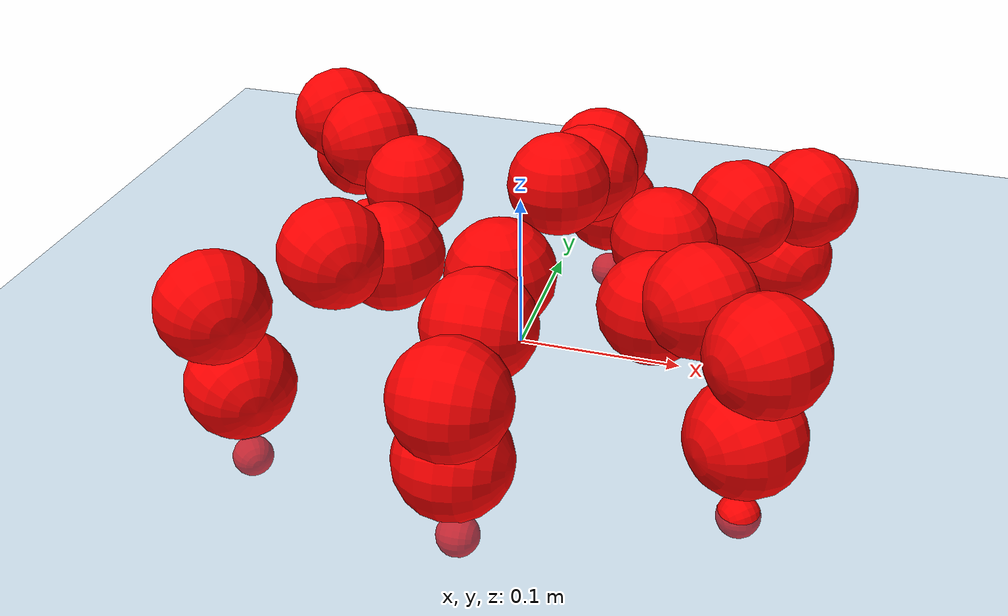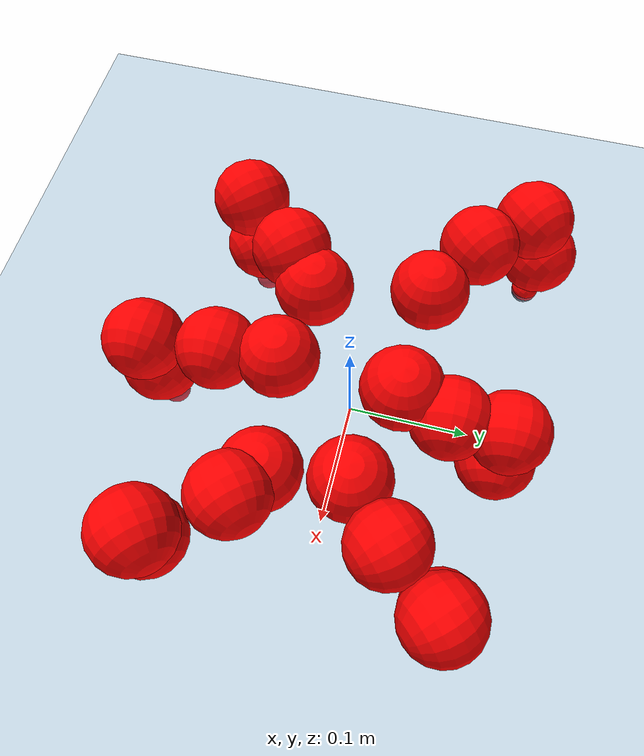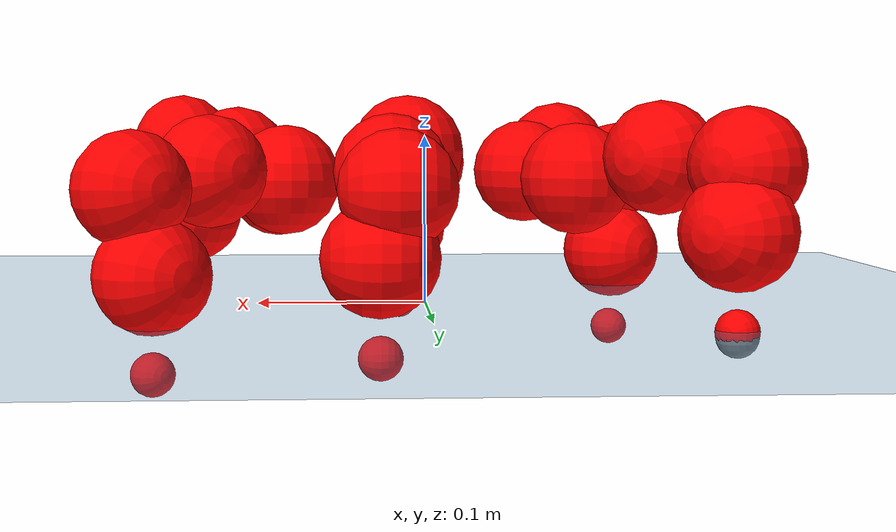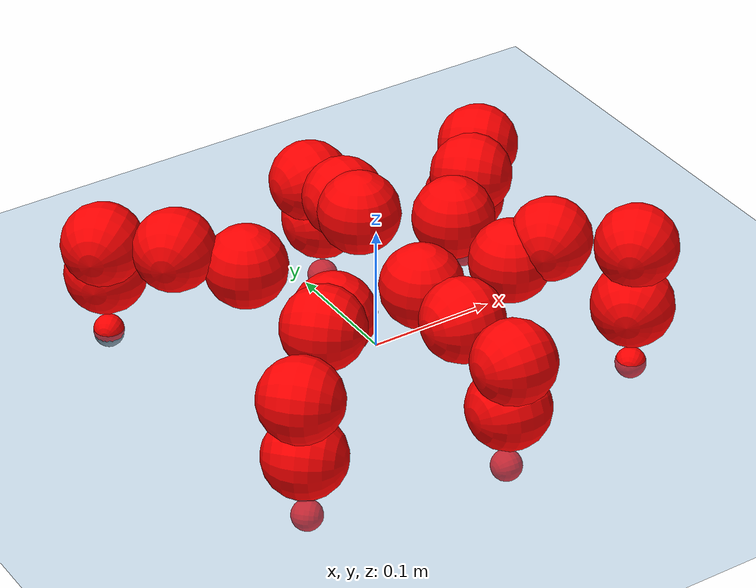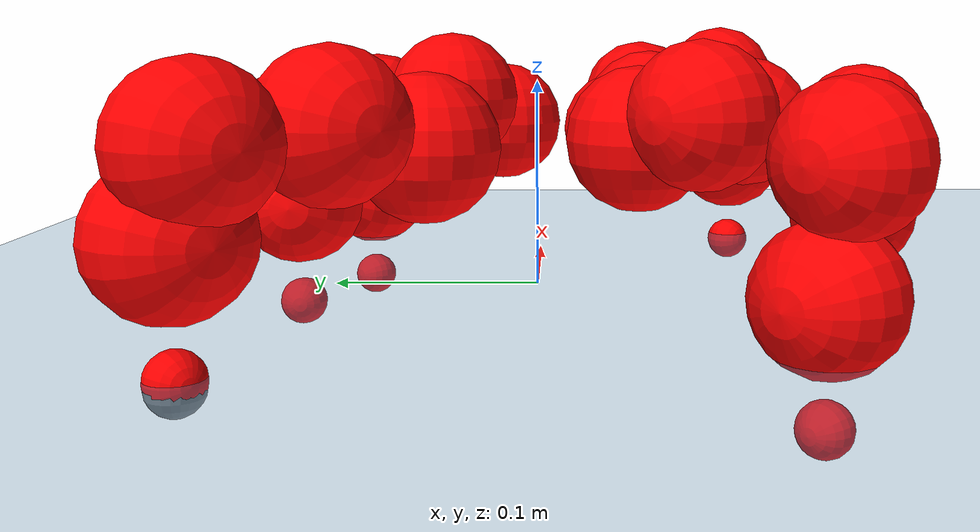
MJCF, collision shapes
<mujoco model="Golem">
  <compiler angle="radian" assetdir="assets" balanceinertia="true" inertiafromgeom="false"/>

  <option timestep="0.005" density="1.2" viscosity="2e-05"/>

  <size nkey="1"/>

  <visual>
    <quality shadowsize="8192"/>
    <map shadowclip="0.5"/>
  </visual>

  <default>
    <default class="/">
      <joint armature="0.01" damping="0.01" frictionloss="0.01"/>
      <geom contype="0" conaffinity="0" group="1" solref="-1000 -80"/>
      <site size="0.01 0.005 0.005" group="5"/>
      <general forcelimited="true" biastype="affine" gainprm="25" biasprm="0 -25 -0.5"/>
      <default class="visual">
        <geom type="mesh" group="2"/>
      </default>
      <default class="collision">
        <geom group="3"/>
      </default>
      <default class="foot">
        <geom size="0.01 0 0" condim="6" group="4" priority="1" solimp="0.015 1 0.01"/>
      </default>
      <default class="reward_collision_sphere">
        <geom group="5" rgba="1 0 0 1"/>
      </default>
    </default>
  </default>

  <asset>
    <texture type="skybox" colorspace="auto" name="//unnamed_texture_0" builtin="gradient" rgb1="0.95 0.95 0.95" rgb2="0.95 0.95 0.95" width="100" height="600"/>
    <texture type="2d" colorspace="auto" name="texplane" builtin="checker" rgb1="0.345 0.575 0.748" rgb2="0.345 0.575 0.748" markrgb="1 1 1" width="512" height="512"/>
    <material name="MatPlane" class="/" texture="texplane" texuniform="true" texrepeat="2 2" specular="0.9"/>
    <mesh name="body" class="/" file="body.stl" scale="0.001 0.001 0.001"/>
    <mesh name="coxa" class="/" file="coxa.stl" scale="0.001 0.001 0.001"/>
    <mesh name="femur" class="/" file="femur.stl" scale="0.001 0.001 0.001"/>
    <mesh name="tibia" class="/" file="tibia.stl" scale="0.001 0.001 0.001"/>
    <mesh name="tarsus" class="/" file="tarsus.stl" scale="0.001 0.001 0.001"/>
  </asset>

  <worldbody>
    <geom name="floor" class="/" size="100 100 0.125" type="plane" group="0" material="MatPlane"/>
    <light name="toplight_shadow" class="/" pos="0 0 5" dir="0.0990148 0.0990148 -0.990148" type="directional" ambient="0.04 0.04 0.04" diffuse="0.55 0.55 0.55" specular="0.12 0.12 0.12"/>
    <light name="toplight_fill" class="/" pos="0 0 5" dir="0.0990148 0.0990148 -0.990148" type="directional" castshadow="false" ambient="0.04 0.04 0.04" diffuse="0.3 0.3 0.3" specular="0.08 0.08 0.08"/>
    <body name="trunk" pos="0.000896295 -0.000934111 -0.00484269" quat="0.999969 0.00319632 -0.00717621 0.000595019">
      <inertial pos="-0.00562928 -0.000708529 -0.00518128" quat="0.999989 0.00419177 -0.00222785 0.000319306" mass="1.50883" diaginertia="0.000259431 0.000577699 0.0412542"/>
      <joint name="//unnamed_joint_0" type="free"/>
      <geom name="//unnamed_geom_1" class="/" pos="0 0 0.0861737" quat="1 0 0 0" type="mesh" rgba="0.9 0.9 0.9 1" mesh="body"/>
      <site name="imu" class="/" pos="-0.0109355 0.0472601 0.136414" size="0.00795299"/>
      <camera name="track" class="/" pos="0 -1.10348 0" quat="0.707107 0.707107 0 0" mode="trackcom"/>
      <camera name="ego_camera" class="/" pos="0.0634 0 0.134646" quat="-0.5 -0.5 0.5 0.5"/>
      <body name="coxa_RR" pos="-0.0752356 -0.0536824 0.0839525" quat="0.377282 0.0020507 -0.00474596 -0.926084">
        <inertial pos="0.00147471 -0.000594544 -0.0118181" quat="0.998666 0.0152169 -0.0156228 0.0467999" mass="0.0898073" diaginertia="0.000230866 0.000431814 0.0377928"/>
        <joint name="coxa_joint_RR" class="/" pos="0 0 0" axis="0.00799956 -0.00955646 -0.999922" range="-2.8983 3.42052" armature="0.00806352" damping="0" frictionloss="0.00413123"/>
        <geom name="//unnamed_geom_2" class="/" type="mesh" rgba="0.2 0.2 0.2 1" mesh="coxa"/>
        <geom name="//unnamed_geom_3" class="reward_collision_sphere" size="0.031812" pos="-0.0146308 0 0"/>
        <body name="femur_RR" pos="0.0194428 0.000908717 0.0121145" quat="0.500243 -0.499329 0.501396 0.499029">
          <inertial pos="0.00115072 -0.000954819 0.00438458" quat="0.999964 -0.0044542 0.00550045 0.00475107" mass="0.100187" diaginertia="0.000250325 0.000459715 0.0480258"/>
          <joint name="femur_joint_RR" class="/" pos="0 0 0" axis="0.0269482 0.0304647 -0.999173" range="-3.41923 3.12068" armature="0.0130012" damping="0.0476974" frictionloss="0.0102863"/>
          <geom name="//unnamed_geom_4" class="/" type="mesh" rgba="0.9 0.9 0.9 1" mesh="femur"/>
          <geom name="//unnamed_geom_5" class="reward_collision_sphere" size="0.031812"/>
          <body name="tibia_RR" pos="0.0114918 -0.0706952 0.00105702" quat="-0.0027545 0.999984 -0.00480927 -0.000956061">
            <inertial pos="-0.0124993 -0.00925017 -0.000548238" quat="0.999958 -0.00459987 0.0060901 -0.00512444" mass="0.0852925" diaginertia="0.000297936 0.000507533 0.0515302"/>
            <joint name="tibia_joint_RR" class="/" pos="0 0 0" axis="-0.037464 0.0612145 0.997421" range="-3.42805 3.11683" armature="0.0123184" damping="0.0557547" frictionloss="0.00930701"/>
            <geom name="//unnamed_geom_6" class="/" type="mesh" rgba="0.2 0.2 0.2 1" mesh="tibia"/>
            <geom name="//unnamed_geom_7" class="reward_collision_sphere" size="0.031812"/>
            <body name="tarsus_RR" pos="0.0547562 -0.00798392 0.000584257" quat="0.999994 -0.000446513 0.00256043 -0.00217583">
              <inertial pos="0.0290967 0.00301612 -0.00271778" quat="0.500258 0.501433 0.497829 0.500473" mass="0.0912549" diaginertia="0.000218998 0.000506268 0.0344169"/>
              <joint name="tarsus_joint_RR" class="/" pos="0 0 0" axis="-0.0192849 0.0600835 0.998007" range="-2.97693 3.20497" armature="0.00951324" damping="0" frictionloss="0.00641302"/>
              <geom name="//unnamed_geom_8" class="/" type="mesh" rgba="0.9 0.9 0.9 1" mesh="tarsus"/>
              <geom name="foot_1" class="foot" size="0.00610261" pos="0.0546215 0 0" quat="0 -0.707107 0 0.707107"/>
              <geom name="//unnamed_geom_10" class="reward_collision_sphere" size="0.031812"/>
              <geom name="//unnamed_geom_11" class="reward_collision_sphere" size="0.0119295" pos="0.0524269 0 0"/>
              <site name="foot_1" class="foot" pos="0.0546215 0 0" quat="0 -0.707107 0 0.707107" size="0.00795299"/>
            </body>
          </body>
        </body>
      </body>
      <body name="coxa_RM" pos="0.00457726 -0.0676198 0.0879784" quat="0.706653 0.000727651 0.0069771 -0.707526">
        <inertial pos="-0.00812201 0.013285 -0.006255" quat="0.999958 0.0078432 0.00164024 0.00448897" mass="0.125259" diaginertia="0.000348331 0.000553348 0.0475248"/>
        <joint name="coxa_joint_RM" class="/" pos="0 0 0" axis="-0.0372076 -0.0541458 -0.99784" stiffness="0.00263056" range="-3.15499 2.88862" armature="0.0024662" damping="0.0218777" frictionloss="0.01235"/>
        <geom name="//unnamed_geom_12" class="/" type="mesh" rgba="0.2 0.2 0.2 1" mesh="coxa"/>
        <geom name="//unnamed_geom_13" class="reward_collision_sphere" size="0.031812" pos="-0.0146308 0 0"/>
        <body name="femur_RM" pos="0.0336128 0.00287222 -0.00229123" quat="0.499983 -0.499933 0.500072 0.500012">
          <inertial pos="-0.0101397 -0.00493237 -0.00250769" quat="0.999711 -0.0100319 -0.013015 0.017521" mass="0.0778345" diaginertia="0.000280149 0.000479096 0.0415234"/>
          <joint name="femur_joint_RM" class="/" pos="0 0 0" axis="0.0279764 -0.01544 -0.999489" stiffness="0.00356394" range="-2.97032 3.15282" armature="0.00924121" damping="0" frictionloss="0.00373619"/>
          <geom name="//unnamed_geom_14" class="/" type="mesh" rgba="0.9 0.9 0.9 1" mesh="femur"/>
          <geom name="//unnamed_geom_15" class="reward_collision_sphere" size="0.031812"/>
          <body name="tibia_RM" pos="0.00254204 -0.0586264 0.00396166" quat="-0.00129412 0.999999 0.000561277 0.000299214">
            <inertial pos="-0.00703846 0.00230003 0.0134853" quat="0.997918 0.0406155 -0.050075 0.00151452" mass="0.101603" diaginertia="0.000226624 0.000499413 0.0370301"/>
            <joint name="tibia_joint_RM" class="/" pos="0 0 0" axis="0.0046515 0.00115705 0.999989" range="-3.21902 3.28886" armature="0.00308735" damping="0" frictionloss="0.00187334"/>
            <geom name="//unnamed_geom_16" class="/" type="mesh" rgba="0.2 0.2 0.2 1" mesh="tibia"/>
            <geom name="//unnamed_geom_17" class="reward_collision_sphere" size="0.031812"/>
            <body name="tarsus_RM" pos="0.0406864 -0.00257797 0.00120697" quat="1 -0.000268519 0.000381847 0.000172052">
              <inertial pos="0.0184313 0.000584034 0.00290878" quat="0.471509 0.532254 0.518796 0.47459" mass="0.0954412" diaginertia="0.000247376 0.000463643 0.0500071"/>
              <joint name="tarsus_joint_RM" class="/" pos="0 0 0" axis="-0.00042543 0.000538299 1" range="-3.42906 2.96943" armature="0.00196985" damping="0.00301049" frictionloss="0.00747185"/>
              <geom name="//unnamed_geom_18" class="/" type="mesh" rgba="0.9 0.9 0.9 1" mesh="tarsus"/>
              <geom name="foot_2" class="foot" size="0.00374731" pos="0.0546215 0 0" quat="0 -0.707107 0 0.707107"/>
              <geom name="//unnamed_geom_20" class="reward_collision_sphere" size="0.031812"/>
              <geom name="//unnamed_geom_21" class="reward_collision_sphere" size="0.0119295" pos="0.0524269 0 0"/>
              <site name="foot_2" class="foot" pos="0.0546215 0 0" quat="0 -0.707107 0 0.707107" size="0.00795299"/>
            </body>
          </body>
        </body>
      </body>
      <body name="coxa_RF" pos="0.0997005 -0.0542183 0.0735569" quat="0.923884 -0.000242797 -1.37553e-05 -0.382672">
        <inertial pos="0.0114104 0.0160001 -0.0102473" quat="0.998468 0.0383132 -0.0353684 -0.0185367" mass="0.108834" diaginertia="0.000240426 0.000489255 0.0444096"/>
        <joint name="coxa_joint_RF" class="/" pos="0 0 0" axis="0.010184 -0.00224403 -0.999946" stiffness="0.00210063" range="-2.988 2.85638" armature="0.0118686" damping="0" frictionloss="0.00907798"/>
        <geom name="//unnamed_geom_22" class="/" type="mesh" rgba="0.2 0.2 0.2 1" mesh="coxa"/>
        <geom name="//unnamed_geom_23" class="reward_collision_sphere" size="0.031812" pos="-0.0146308 0 0"/>
        <body name="femur_RF" pos="0.0132351 0.0101163 0.0165028" quat="0.5033 -0.494785 0.499053 0.502815">
          <inertial pos="-0.0014304 0.0112562 -0.0138982" quat="0.997368 0.0616874 -0.0378597 -0.00433644" mass="0.106472" diaginertia="0.000309398 0.000602859 0.0465305"/>
          <joint name="femur_joint_RF" class="/" pos="0 0 0" axis="-0.0015218 -0.0322421 -0.999479" range="-3.35472 3.13982" armature="0.00576235" damping="0.048599" frictionloss="0.0134667"/>
          <geom name="//unnamed_geom_24" class="/" type="mesh" rgba="0.9 0.9 0.9 1" mesh="femur"/>
          <geom name="//unnamed_geom_25" class="reward_collision_sphere" size="0.031812"/>
          <body name="tibia_RF" pos="-0.00842038 -0.065122 -0.008122" quat="0.00268312 0.999984 -0.00124975 -0.00477686">
            <inertial pos="-0.000270291 -0.00905411 0.00675839" quat="0.998597 0.046956 -0.0242345 -0.00345786" mass="0.0977957" diaginertia="0.000267442 0.000539443 0.049869"/>
            <joint name="tibia_joint_RF" class="/" pos="0 0 0" axis="0.0246912 -0.0613635 0.99781" range="-3.05077 3.13574" armature="0.0108722" damping="0.000385314" frictionloss="0.00813367"/>
            <geom name="//unnamed_geom_26" class="/" type="mesh" rgba="0.2 0.2 0.2 1" mesh="tibia"/>
            <geom name="//unnamed_geom_27" class="reward_collision_sphere" size="0.031812"/>
            <body name="tarsus_RF" pos="0.0466612 9.3305e-05 0.00885781" quat="0.999976 -0.00253622 -0.000947525 0.00633377">
              <inertial pos="0.0429206 -0.00102608 -0.0156536" quat="0.459192 0.485436 0.523234 0.528887" mass="0.132213" diaginertia="0.000268434 0.000627054 0.0512461"/>
              <joint name="tarsus_joint_RF" class="/" pos="0 0 0" axis="0.0661029 -0.0292959 0.997383" stiffness="0.000769173" range="-3.43077 3.03898" armature="0.00769942" damping="0" frictionloss="0.00375258"/>
              <geom name="//unnamed_geom_28" class="/" type="mesh" rgba="0.9 0.9 0.9 1" mesh="tarsus"/>
              <geom name="foot_3" class="foot" size="0.0062495" pos="0.0546215 0 0" quat="0 -0.707107 0 0.707107"/>
              <geom name="//unnamed_geom_30" class="reward_collision_sphere" size="0.031812"/>
              <geom name="//unnamed_geom_31" class="reward_collision_sphere" size="0.0119295" pos="0.0524269 0 0"/>
              <site name="foot_3" class="foot" pos="0.0546215 0 0" quat="0 -0.707107 0 0.707107" size="0.00795299"/>
            </body>
          </body>
        </body>
      </body>
      <body name="coxa_LR" pos="-0.0943396 0.0573052 0.0819615" quat="0.385591 0.00245256 -0.00586431 0.922648">
        <inertial pos="-0.0134421 0.000239038 0.00993276" quat="0.998265 0.0499831 -0.0198466 0.023956" mass="0.0975481" diaginertia="0.000259232 0.000498559 0.0431454"/>
        <joint name="coxa_joint_LR" class="/" pos="0 0 0" axis="0.0681444 0.0219797 -0.997433" stiffness="0.015134" range="-3.05378 3.09636" armature="0.0110708" damping="0.0401453" frictionloss="0.00800328"/>
        <geom name="//unnamed_geom_32" class="/" type="mesh" rgba="0.2 0.2 0.2 1" mesh="coxa"/>
        <geom name="//unnamed_geom_33" class="reward_collision_sphere" size="0.031812" pos="-0.0146308 0 0"/>
        <body name="femur_LR" pos="0.0372226 0.00812351 0.0124264" quat="0.50214 -0.498814 0.495061 0.50394">
          <inertial pos="-0.00658397 0.00282849 -3.33928e-06" quat="1 -0.000152979 0.000508738 -0.000614237" mass="0.10752" diaginertia="0.000281557 0.000517415 0.0407851"/>
          <joint name="femur_joint_LR" class="/" pos="0 0 0" axis="0.000458954 -0.000188004 1" range="-3.30516 2.82151" armature="0.00806862" damping="0" frictionloss="0.00184726"/>
          <geom name="//unnamed_geom_34" class="/" type="mesh" rgba="0.9 0.9 0.9 1" mesh="femur"/>
          <geom name="//unnamed_geom_35" class="reward_collision_sphere" size="0.031812"/>
          <body name="tibia_LR" pos="0.00391139 -0.055283 -0.00144124" quat="0.000240144 0.999999 -0.00107988 -0.000869989">
            <inertial pos="-0.00541311 0.00418059 -0.00369406" quat="0.999658 0.0206463 -0.0122843 0.0103262" mass="0.117165" diaginertia="0.000287227 0.000462491 0.0465032"/>
            <joint name="tibia_joint_LR" class="/" pos="0 0 0" axis="0.00637081 0.0106779 -0.999923" stiffness="0.0227788" range="-3.25062 3.40499" armature="0.0141822" damping="0" frictionloss="0.0114293"/>
            <geom name="//unnamed_geom_36" class="/" type="mesh" rgba="0.2 0.2 0.2 1" mesh="tibia"/>
            <geom name="//unnamed_geom_37" class="reward_collision_sphere" size="0.031812"/>
            <body name="tarsus_LR" pos="0.0343938 0.00317067 0.0132011" quat="0.999997 0.00132076 0.00197675 -0.00096284">
              <inertial pos="0.0282991 0.00676575 0.00129182" quat="0.503606 0.49841 0.498361 0.499605" mass="0.0959995" diaginertia="0.000257841 0.000525833 0.0416267"/>
              <joint name="tarsus_joint_LR" class="/" pos="0 0 0" axis="-0.00385293 0.0252597 -0.999673" stiffness="0.0388326" range="-3.42071 3.1141" armature="0.00764609" damping="0.0825911" frictionloss="0.00669225"/>
              <geom name="//unnamed_geom_38" class="/" type="mesh" rgba="0.9 0.9 0.9 1" mesh="tarsus"/>
              <geom name="foot_4" class="foot" size="0.0115871" pos="0.0546215 0 0" quat="0.707107 0 -0.707107 0"/>
              <geom name="//unnamed_geom_40" class="reward_collision_sphere" size="0.031812"/>
              <geom name="//unnamed_geom_41" class="reward_collision_sphere" size="0.0119295" pos="0.0524269 0 0"/>
              <site name="foot_4" class="foot" pos="0.0546215 0 0" quat="0.707107 0 -0.707107 0" size="0.00795299"/>
            </body>
          </body>
        </body>
      </body>
      <body name="coxa_LM" pos="0.0123587 0.0581806 0.0959586" quat="0.703977 0.00258859 0.00609039 0.710192">
        <inertial pos="0.00740843 -0.00020264 -0.0096263" quat="0.999924 0.00582985 0.00397296 0.0100901" mass="0.0869691" diaginertia="0.000178811 0.000406106 0.0319657"/>
        <joint name="coxa_joint_LM" class="/" pos="0 0 0" axis="-0.000920892 0.00281296 -0.999996" range="-2.89182 3.2216" armature="0.0127075" damping="0" frictionloss="0.00320256"/>
        <geom name="//unnamed_geom_42" class="/" type="mesh" rgba="0.2 0.2 0.2 1" mesh="coxa"/>
        <geom name="//unnamed_geom_43" class="reward_collision_sphere" size="0.031812" pos="-0.0146308 0 0"/>
        <body name="femur_LM" pos="0.0237091 -0.0105653 -0.0105198" quat="0.500315 -0.499812 0.499936 0.499937">
          <inertial pos="-6.46811e-05 0.0109256 -0.00102653" quat="0.998856 0.0339286 -0.0168735 0.0291532" mass="0.136071" diaginertia="0.000350756 0.000602214 0.0519236"/>
          <joint name="femur_joint_LM" class="/" pos="0 0 0" axis="0.0390251 0.00025358 0.999238" range="-3.23608 3.18062" armature="0.011716" damping="0" frictionloss="0.00395423"/>
          <geom name="//unnamed_geom_44" class="/" type="mesh" rgba="0.9 0.9 0.9 1" mesh="femur"/>
          <geom name="//unnamed_geom_45" class="reward_collision_sphere" size="0.031812"/>
          <body name="tibia_LM" pos="0.0080207 -0.0447988 0.00188582" quat="-5.23484e-05 0.999999 0.00126904 0.000957752">
            <inertial pos="0.0146312 -0.0159618 -0.00245722" quat="0.999999 -0.000897643 -0.000697691 0.000714134" mass="0.081198" diaginertia="0.000302234 0.000482201 0.0408565"/>
            <joint name="tibia_joint_LM" class="/" pos="0 0 0" axis="0.00041397 -0.000226177 -1" range="-3.36487 3.12209" armature="0.00781533" damping="0.00279153" frictionloss="0.0115982"/>
            <geom name="//unnamed_geom_46" class="/" type="mesh" rgba="0.2 0.2 0.2 1" mesh="tibia"/>
            <geom name="//unnamed_geom_47" class="reward_collision_sphere" size="0.031812"/>
            <body name="tarsus_LM" pos="0.0359505 -0.00265396 0.00916812" quat="1 -0.000532823 6.49468e-05 0.000300712">
              <inertial pos="0.0361982 0.00374359 -0.000932335" quat="0.497977 0.508776 0.491582 0.50151" mass="0.108242" diaginertia="0.000256651 0.000489778 0.0358178"/>
              <joint name="tarsus_joint_LM" class="/" pos="0 0 0" axis="-0.0457715 -0.0403678 -0.998136" stiffness="0.0174142" range="-3.25026 3.36096" armature="0.00826321" damping="0" frictionloss="0.0128286"/>
              <geom name="//unnamed_geom_48" class="/" type="mesh" rgba="0.9 0.9 0.9 1" mesh="tarsus"/>
              <geom name="foot_5" class="foot" size="0.00703849" pos="0.0546215 0 0" quat="0.707107 0 -0.707107 0"/>
              <geom name="//unnamed_geom_50" class="reward_collision_sphere" size="0.031812"/>
              <geom name="//unnamed_geom_51" class="reward_collision_sphere" size="0.0119295" pos="0.0524269 0 0"/>
              <site name="foot_5" class="foot" pos="0.0546215 0 0" quat="0.707107 0 -0.707107 0" size="0.00795299"/>
            </body>
          </body>
        </body>
      </body>
      <body name="coxa_LF" pos="0.0929018 0.0320908 0.0783297" quat="0.925154 0.00172242 0.00171853 0.379584">
        <inertial pos="0.00265925 0.0110844 0.00343133" quat="0.999702 0.00912965 0.0222941 -0.00381335" mass="0.114697" diaginertia="0.000311907 0.000680324 0.0501384"/>
        <joint name="coxa_joint_LF" class="/" pos="0 0 0" axis="0.0210415 -0.000285231 -0.999779" stiffness="0.0136708" range="-2.92673 3.27013" armature="0.00791622" damping="0.040891" frictionloss="0.00451521"/>
        <geom name="//unnamed_geom_52" class="/" type="mesh" rgba="0.2 0.2 0.2 1" mesh="coxa"/>
        <geom name="//unnamed_geom_53" class="reward_collision_sphere" size="0.031812" pos="-0.0146308 0 0"/>
        <body name="femur_LF" pos="0.0396513 -0.00296541 0.00533483" quat="0.499145 -0.499778 0.497127 0.503925">
          <inertial pos="-0.00155186 -0.00121086 0.00271758" quat="0.996989 -0.00932052 0.0067639 0.0766878" mass="0.100485" diaginertia="0.00029474 0.000597847 0.0494367"/>
          <joint name="femur_joint_LF" class="/" pos="0 0 0" axis="-0.00446086 -0.0452872 0.998964" stiffness="0.00484224" range="-3.16194 3.29807" armature="0.00868776" damping="0" frictionloss="0.0142955"/>
          <geom name="//unnamed_geom_54" class="/" type="mesh" rgba="0.9 0.9 0.9 1" mesh="femur"/>
          <geom name="//unnamed_geom_55" class="reward_collision_sphere" size="0.031812"/>
          <body name="tibia_LF" pos="0.00887853 -0.0580782 0.00545009" quat="8.31738e-06 1 0.000156989 1.94225e-05">
            <inertial pos="-0.00388727 0.00302467 0.00123595" quat="0.999105 0.00730355 0.0398837 -0.012085" mass="0.0885484" diaginertia="0.000298362 0.000570699 0.0495529"/>
            <joint name="tibia_joint_LF" class="/" pos="0 0 0" axis="0.0258716 0.0358741 -0.999021" range="-2.83577 3.11327" armature="0.00406507" damping="0" frictionloss="0.0121079"/>
            <geom name="//unnamed_geom_56" class="/" type="mesh" rgba="0.2 0.2 0.2 1" mesh="tibia"/>
            <geom name="//unnamed_geom_57" class="reward_collision_sphere" size="0.031812"/>
            <body name="tarsus_LF" pos="0.0459587 -0.00682316 -0.00856683" quat="1 0.000110263 -0.000272084 -0.00019891">
              <inertial pos="0.0368608 9.99088e-05 -0.0149439" quat="0.497718 0.498003 0.501886 0.502374" mass="0.114825" diaginertia="0.000277826 0.000556256 0.0466809"/>
              <joint name="tarsus_joint_LF" class="/" pos="0 0 0" axis="0.0472005 -0.0317398 -0.998381" range="-3.16325 2.94933" armature="0.00808454" damping="0.0806731" frictionloss="0.00680075"/>
              <geom name="//unnamed_geom_58" class="/" type="mesh" rgba="0.9 0.9 0.9 1" mesh="tarsus"/>
              <geom name="foot_6" class="foot" size="0.00808446" pos="0.0546215 0 0" quat="0.707107 0 -0.707107 0"/>
              <geom name="//unnamed_geom_60" class="reward_collision_sphere" size="0.031812"/>
              <geom name="//unnamed_geom_61" class="reward_collision_sphere" size="0.0119295" pos="0.0524269 0 0"/>
              <site name="foot_6" class="foot" pos="0.0546215 0 0" quat="0.707107 0 -0.707107 0" size="0.00795299"/>
            </body>
          </body>
        </body>
      </body>
    </body>
  </worldbody>

  <contact>
    <pair class="/" geom1="floor" geom2="foot_1" name="//unnamed_contact_0"/>
    <pair class="/" geom1="floor" geom2="foot_2" name="//unnamed_contact_1"/>
    <pair class="/" geom1="floor" geom2="foot_3" name="//unnamed_contact_2"/>
    <pair class="/" geom1="floor" geom2="foot_4" name="//unnamed_contact_3"/>
    <pair class="/" geom1="floor" geom2="foot_5" name="//unnamed_contact_4"/>
    <pair class="/" geom1="floor" geom2="foot_6" name="//unnamed_contact_5"/>
  </contact>

  <actuator>
    <general name="coxa_joint_RR" class="/" joint="coxa_joint_RR" forcerange="-3.39033 3.39033" gainprm="27.4334" biasprm="0 -27.4334 -0.543594"/>
    <general name="femur_joint_RR" class="/" joint="femur_joint_RR" forcerange="-4.16901 4.16901" gainprm="27.4334" biasprm="0 -27.4334 -0.543594"/>
    <general name="tibia_joint_RR" class="/" joint="tibia_joint_RR" forcerange="-6.86328 6.86328" gainprm="27.4334" biasprm="0 -27.4334 -0.543594"/>
    <general name="tarsus_joint_RR" class="/" joint="tarsus_joint_RR" forcerange="-4.93966 4.93966" gainprm="27.4334" biasprm="0 -27.4334 -0.543594"/>
    <general name="coxa_joint_RM" class="/" joint="coxa_joint_RM" forcerange="-3.3531 3.3531" gainprm="27.4334" biasprm="0 -27.4334 -0.543594"/>
    <general name="femur_joint_RM" class="/" joint="femur_joint_RM" forcerange="-3.07394 3.07394" gainprm="27.4334" biasprm="0 -27.4334 -0.543594"/>
    <general name="tibia_joint_RM" class="/" joint="tibia_joint_RM" forcerange="-7.49582 7.49582" gainprm="27.4334" biasprm="0 -27.4334 -0.543594"/>
    <general name="tarsus_joint_RM" class="/" joint="tarsus_joint_RM" forcerange="-2.49096 2.49096" gainprm="27.4334" biasprm="0 -27.4334 -0.543594"/>
    <general name="coxa_joint_RF" class="/" joint="coxa_joint_RF" forcerange="-2.80908 2.80908" gainprm="27.4334" biasprm="0 -27.4334 -0.543594"/>
    <general name="femur_joint_RF" class="/" joint="femur_joint_RF" forcerange="-8.8185 8.8185" gainprm="27.4334" biasprm="0 -27.4334 -0.543594"/>
    <general name="tibia_joint_RF" class="/" joint="tibia_joint_RF" forcerange="-7.39912 7.39912" gainprm="27.4334" biasprm="0 -27.4334 -0.543594"/>
    <general name="tarsus_joint_RF" class="/" joint="tarsus_joint_RF" forcerange="-5.52183 5.52183" gainprm="27.4334" biasprm="0 -27.4334 -0.543594"/>
    <general name="coxa_joint_LR" class="/" joint="coxa_joint_LR" forcerange="-3.99136 3.99136" gainprm="27.4334" biasprm="0 -27.4334 -0.543594"/>
    <general name="femur_joint_LR" class="/" joint="femur_joint_LR" forcerange="-8.13735 8.13735" gainprm="27.4334" biasprm="0 -27.4334 -0.543594"/>
    <general name="tibia_joint_LR" class="/" joint="tibia_joint_LR" forcerange="-7.44675 7.44675" gainprm="27.4334" biasprm="0 -27.4334 -0.543594"/>
    <general name="tarsus_joint_LR" class="/" joint="tarsus_joint_LR" forcerange="-6.41901 6.41901" gainprm="27.4334" biasprm="0 -27.4334 -0.543594"/>
    <general name="coxa_joint_LM" class="/" joint="coxa_joint_LM" forcerange="-5.64195 5.64195" gainprm="27.4334" biasprm="0 -27.4334 -0.543594"/>
    <general name="femur_joint_LM" class="/" joint="femur_joint_LM" forcerange="-5.69372 5.69372" gainprm="27.4334" biasprm="0 -27.4334 -0.543594"/>
    <general name="tibia_joint_LM" class="/" joint="tibia_joint_LM" forcerange="-9.10045 9.10045" gainprm="27.4334" biasprm="0 -27.4334 -0.543594"/>
    <general name="tarsus_joint_LM" class="/" joint="tarsus_joint_LM" forcerange="-5.72166 5.72166" gainprm="27.4334" biasprm="0 -27.4334 -0.543594"/>
    <general name="coxa_joint_LF" class="/" joint="coxa_joint_LF" forcerange="-3.04988 3.04988" gainprm="27.4334" biasprm="0 -27.4334 -0.543594"/>
    <general name="femur_joint_LF" class="/" joint="femur_joint_LF" forcerange="-2.96957 2.96957" gainprm="27.4334" biasprm="0 -27.4334 -0.543594"/>
    <general name="tibia_joint_LF" class="/" joint="tibia_joint_LF" forcerange="-5.81465 5.81465" gainprm="27.4334" biasprm="0 -27.4334 -0.543594"/>
    <general name="tarsus_joint_LF" class="/" joint="tarsus_joint_LF" forcerange="-6.97062 6.97062" gainprm="27.4334" biasprm="0 -27.4334 -0.543594"/>
  </actuator>

  <sensor>
    <gyro site="imu" name="imu_angular_velocity"/>
    <velocimeter site="imu" name="imu_linear_velocity"/>
    <framelinvel objtype="site" objname="foot_1" name="foot_1_global_linear_velocity"/>
    <framelinvel objtype="site" objname="foot_2" name="foot_2_global_linear_velocity"/>
    <framelinvel objtype="site" objname="foot_3" name="foot_3_global_linear_velocity"/>
    <framelinvel objtype="site" objname="foot_4" name="foot_4_global_linear_velocity"/>
    <framelinvel objtype="site" objname="foot_5" name="foot_5_global_linear_velocity"/>
    <framelinvel objtype="site" objname="foot_6" name="foot_6_global_linear_velocity"/>
  </sensor>

  <keyframe>
    <key name="home" qpos="0 0 0.1457 1 0 0 0 0 0 0 0 0 0 0 0 0 0 0 0 0 0 0 0 0 0 0 0 0 0 0 0"/>
  </keyframe>
</mujoco>
